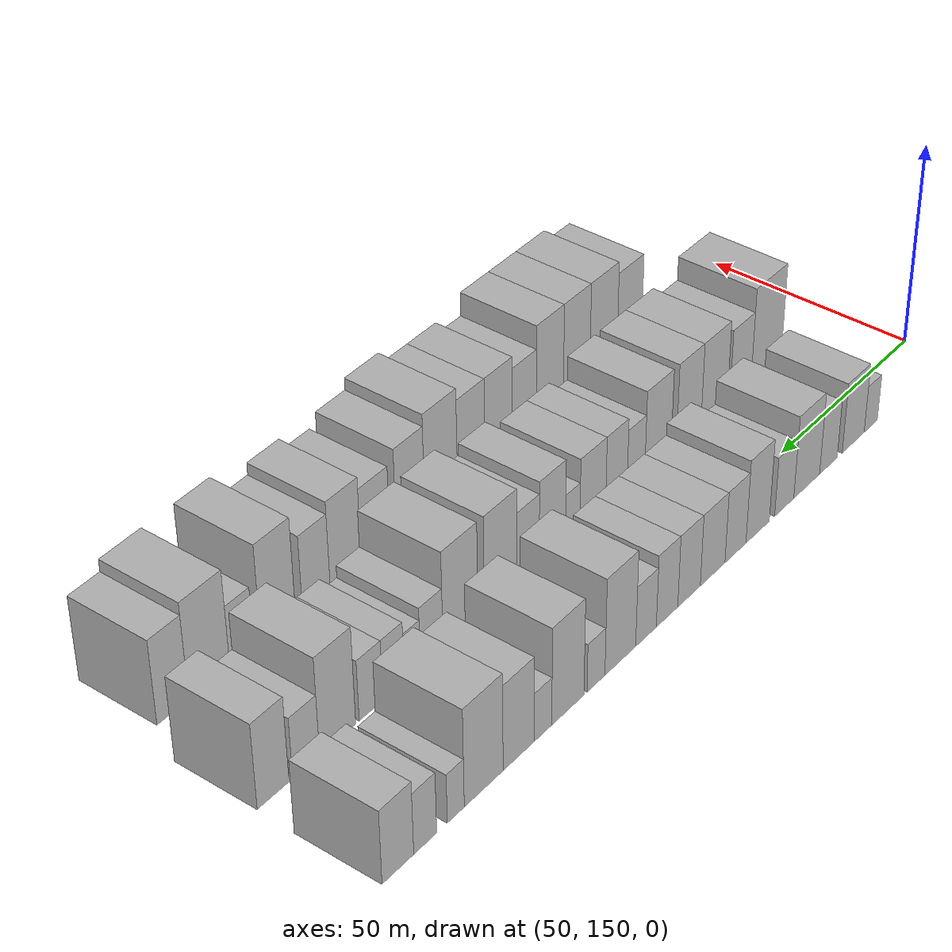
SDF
<sdf version="1.6">
 <world name="default">
  <model name="building_57">
   <static>1</static>
   <pose>50.0000 181.1910 0 0.000000 0.000000 0.000000</pose>
   <link name="link">
    <pose>0 0 6.00 0 0 0</pose>
    <collision name="collision"><geometry><box><size>20.0000 5.3339 12.0000</size></box></geometry></collision>
    <visual name="visual">
     <cast_shadows>0</cast_shadows>
     <geometry><box><size>20.0000 5.3339 12.0000</size></box></geometry>
     <material>
      <script>
       <uri>model://HANNAS_wall/materials/scripts</uri>
       <uri>model://HANNAS_wall/materials/textures</uri>
       <name>vrc/HANNAS_wall</name>
      </script>
     </material>
    </visual>
   </link>
  </model>
  <model name="building_58">
   <static>1</static>
   <pose>50.0000 188.2223 0 0.000000 0.000000 0.000000</pose>
   <link name="link">
    <pose>0 0 9.00 0 0 0</pose>
    <collision name="collision"><geometry><box><size>20.0000 8.7287 18.0000</size></box></geometry></collision>
    <visual name="visual">
     <cast_shadows>0</cast_shadows>
     <geometry><box><size>20.0000 8.7287 18.0000</size></box></geometry>
     <material>
      <script>
       <uri>model://HANNAS_wall/materials/scripts</uri>
       <uri>model://HANNAS_wall/materials/textures</uri>
       <name>vrc/HANNAS_wall</name>
      </script>
     </material>
    </visual>
   </link>
  </model>
  <model name="building_59">
   <static>1</static>
   <pose>50.0000 198.0226 0 0.000000 0.000000 0.000000</pose>
   <link name="link">
    <pose>0 0 7.50 0 0 0</pose>
    <collision name="collision"><geometry><box><size>20.0000 6.8718 15.0000</size></box></geometry></collision>
    <visual name="visual">
     <cast_shadows>0</cast_shadows>
     <geometry><box><size>20.0000 6.8718 15.0000</size></box></geometry>
     <material>
      <script>
       <uri>model://HANNAS_wall/materials/scripts</uri>
       <uri>model://HANNAS_wall/materials/textures</uri>
       <name>vrc/HANNAS_wall</name>
      </script>
     </material>
    </visual>
   </link>
  </model>
  <model name="building_60">
   <static>1</static>
   <pose>50.0000 206.3866 0 0.000000 0.000000 0.000000</pose>
   <link name="link">
    <pose>0 0 10.50 0 0 0</pose>
    <collision name="collision"><geometry><box><size>20.0000 9.8563 21.0000</size></box></geometry></collision>
    <visual name="visual">
     <cast_shadows>0</cast_shadows>
     <geometry><box><size>20.0000 9.8563 21.0000</size></box></geometry>
     <material>
      <script>
       <uri>model://HANNAS_wall/materials/scripts</uri>
       <uri>model://HANNAS_wall/materials/textures</uri>
       <name>vrc/HANNAS_wall</name>
      </script>
     </material>
    </visual>
   </link>
  </model>
  <model name="building_61">
   <static>1</static>
   <pose>50.0000 214.8966 0 0.000000 0.000000 0.000000</pose>
   <link name="link">
    <pose>0 0 7.50 0 0 0</pose>
    <collision name="collision"><geometry><box><size>20.0000 7.1636 15.0000</size></box></geometry></collision>
    <visual name="visual">
     <cast_shadows>0</cast_shadows>
     <geometry><box><size>20.0000 7.1636 15.0000</size></box></geometry>
     <material>
      <script>
       <uri>model://HANNAS_wall/materials/scripts</uri>
       <uri>model://HANNAS_wall/materials/textures</uri>
       <name>vrc/HANNAS_wall</name>
      </script>
     </material>
    </visual>
   </link>
  </model>
  <model name="building_62">
   <static>1</static>
   <pose>50.0000 224.7553 0 0.000000 0.000000 0.000000</pose>
   <link name="link">
    <pose>0 0 10.50 0 0 0</pose>
    <collision name="collision"><geometry><box><size>20.0000 8.5537 21.0000</size></box></geometry></collision>
    <visual name="visual">
     <cast_shadows>0</cast_shadows>
     <geometry><box><size>20.0000 8.5537 21.0000</size></box></geometry>
     <material>
      <script>
       <uri>model://HANNAS_wall/materials/scripts</uri>
       <uri>model://HANNAS_wall/materials/textures</uri>
       <name>vrc/HANNAS_wall</name>
      </script>
     </material>
    </visual>
   </link>
  </model>
  <model name="building_63">
   <static>1</static>
   <pose>50.0000 232.7942 0 0.000000 0.000000 0.000000</pose>
   <link name="link">
    <pose>0 0 9.00 0 0 0</pose>
    <collision name="collision"><geometry><box><size>20.0000 7.5243 18.0000</size></box></geometry></collision>
    <visual name="visual">
     <cast_shadows>0</cast_shadows>
     <geometry><box><size>20.0000 7.5243 18.0000</size></box></geometry>
     <material>
      <script>
       <uri>model://HANNAS_wall/materials/scripts</uri>
       <uri>model://HANNAS_wall/materials/textures</uri>
       <name>vrc/HANNAS_wall</name>
      </script>
     </material>
    </visual>
   </link>
  </model>
  <model name="building_64">
   <static>1</static>
   <pose>50.0000 240.9045 0 0.000000 0.000000 0.000000</pose>
   <link name="link">
    <pose>0 0 9.00 0 0 0</pose>
    <collision name="collision"><geometry><box><size>20.0000 8.6962 18.0000</size></box></geometry></collision>
    <visual name="visual">
     <cast_shadows>0</cast_shadows>
     <geometry><box><size>20.0000 8.6962 18.0000</size></box></geometry>
     <material>
      <script>
       <uri>model://HANNAS_wall/materials/scripts</uri>
       <uri>model://HANNAS_wall/materials/textures</uri>
       <name>vrc/HANNAS_wall</name>
      </script>
     </material>
    </visual>
   </link>
  </model>
  <model name="building_65">
   <static>1</static>
   <pose>50.0000 249.1445 0 0.000000 0.000000 0.000000</pose>
   <link name="link">
    <pose>0 0 9.00 0 0 0</pose>
    <collision name="collision"><geometry><box><size>20.0000 7.7839 18.0000</size></box></geometry></collision>
    <visual name="visual">
     <cast_shadows>0</cast_shadows>
     <geometry><box><size>20.0000 7.7839 18.0000</size></box></geometry>
     <material>
      <script>
       <uri>model://HANNAS_wall/materials/scripts</uri>
       <uri>model://HANNAS_wall/materials/textures</uri>
       <name>vrc/HANNAS_wall</name>
      </script>
     </material>
    </visual>
   </link>
  </model>
  <model name="building_66">
   <static>1</static>
   <pose>50.0000 256.6748 0 0.000000 0.000000 0.000000</pose>
   <link name="link">
    <pose>0 0 9.00 0 0 0</pose>
    <collision name="collision"><geometry><box><size>20.0000 7.2768 18.0000</size></box></geometry></collision>
    <visual name="visual">
     <cast_shadows>0</cast_shadows>
     <geometry><box><size>20.0000 7.2768 18.0000</size></box></geometry>
     <material>
      <script>
       <uri>model://HANNAS_wall/materials/scripts</uri>
       <uri>model://HANNAS_wall/materials/textures</uri>
       <name>vrc/HANNAS_wall</name>
      </script>
     </material>
    </visual>
   </link>
  </model>
  <model name="building_67">
   <static>1</static>
   <pose>50.0000 263.7551 0 0.000000 0.000000 0.000000</pose>
   <link name="link">
    <pose>0 0 7.50 0 0 0</pose>
    <collision name="collision"><geometry><box><size>20.0000 6.8838 15.0000</size></box></geometry></collision>
    <visual name="visual">
     <cast_shadows>0</cast_shadows>
     <geometry><box><size>20.0000 6.8838 15.0000</size></box></geometry>
     <material>
      <script>
       <uri>model://HANNAS_wall/materials/scripts</uri>
       <uri>model://HANNAS_wall/materials/textures</uri>
       <name>vrc/HANNAS_wall</name>
      </script>
     </material>
    </visual>
   </link>
  </model>
  <model name="building_68">
   <static>1</static>
   <pose>50.0000 272.2019 0 0.000000 0.000000 0.000000</pose>
   <link name="link">
    <pose>0 0 12.00 0 0 0</pose>
    <collision name="collision"><geometry><box><size>20.0000 10.0097 24.0000</size></box></geometry></collision>
    <visual name="visual">
     <cast_shadows>0</cast_shadows>
     <geometry><box><size>20.0000 10.0097 24.0000</size></box></geometry>
     <material>
      <script>
       <uri>model://HANNAS_wall/materials/scripts</uri>
       <uri>model://HANNAS_wall/materials/textures</uri>
       <name>vrc/HANNAS_wall</name>
      </script>
     </material>
    </visual>
   </link>
  </model>
  <model name="building_69">
   <static>1</static>
   <pose>50.0000 280.0561 0 0.000000 0.000000 0.000000</pose>
   <link name="link">
    <pose>0 0 6.00 0 0 0</pose>
    <collision name="collision"><geometry><box><size>20.0000 5.6988 12.0000</size></box></geometry></collision>
    <visual name="visual">
     <cast_shadows>0</cast_shadows>
     <geometry><box><size>20.0000 5.6988 12.0000</size></box></geometry>
     <material>
      <script>
       <uri>model://HANNAS_wall/materials/scripts</uri>
       <uri>model://HANNAS_wall/materials/textures</uri>
       <name>vrc/HANNAS_wall</name>
      </script>
     </material>
    </visual>
   </link>
  </model>
  <model name="building_70">
   <static>1</static>
   <pose>50.0000 288.9301 0 0.000000 0.000000 0.000000</pose>
   <link name="link">
    <pose>0 0 12.00 0 0 0</pose>
    <collision name="collision"><geometry><box><size>20.0000 10.0493 24.0000</size></box></geometry></collision>
    <visual name="visual">
     <cast_shadows>0</cast_shadows>
     <geometry><box><size>20.0000 10.0493 24.0000</size></box></geometry>
     <material>
      <script>
       <uri>model://HANNAS_wall/materials/scripts</uri>
       <uri>model://HANNAS_wall/materials/textures</uri>
       <name>vrc/HANNAS_wall</name>
      </script>
     </material>
    </visual>
   </link>
  </model>
  <model name="building_71">
   <static>1</static>
   <pose>50.0000 296.6088 0 0.000000 0.000000 0.000000</pose>
   <link name="link">
    <pose>0 0 6.00 0 0 0</pose>
    <collision name="collision"><geometry><box><size>20.0000 5.3081 12.0000</size></box></geometry></collision>
    <visual name="visual">
     <cast_shadows>0</cast_shadows>
     <geometry><box><size>20.0000 5.3081 12.0000</size></box></geometry>
     <material>
      <script>
       <uri>model://HANNAS_wall/materials/scripts</uri>
       <uri>model://HANNAS_wall/materials/textures</uri>
       <name>vrc/HANNAS_wall</name>
      </script>
     </material>
    </visual>
   </link>
  </model>
  <model name="building_72">
   <static>1</static>
   <pose>50.0000 303.9596 0 0.000000 0.000000 0.000000</pose>
   <link name="link">
    <pose>0 0 10.50 0 0 0</pose>
    <collision name="collision"><geometry><box><size>20.0000 9.3935 21.0000</size></box></geometry></collision>
    <visual name="visual">
     <cast_shadows>0</cast_shadows>
     <geometry><box><size>20.0000 9.3935 21.0000</size></box></geometry>
     <material>
      <script>
       <uri>model://HANNAS_wall/materials/scripts</uri>
       <uri>model://HANNAS_wall/materials/textures</uri>
       <name>vrc/HANNAS_wall</name>
      </script>
     </material>
    </visual>
   </link>
  </model>
  <model name="building_73">
   <static>1</static>
   <pose>50.0000 314.3340 0 0.000000 0.000000 0.000000</pose>
   <link name="link">
    <pose>0 0 12.00 0 0 0</pose>
    <collision name="collision"><geometry><box><size>20.0000 11.3553 24.0000</size></box></geometry></collision>
    <visual name="visual">
     <cast_shadows>0</cast_shadows>
     <geometry><box><size>20.0000 11.3553 24.0000</size></box></geometry>
     <material>
      <script>
       <uri>model://HANNAS_wall/materials/scripts</uri>
       <uri>model://HANNAS_wall/materials/textures</uri>
       <name>vrc/HANNAS_wall</name>
      </script>
     </material>
    </visual>
   </link>
  </model>
  <model name="building_74">
   <static>1</static>
   <pose>50.0000 322.4411 0 0.000000 0.000000 0.000000</pose>
   <link name="link">
    <pose>0 0 6.00 0 0 0</pose>
    <collision name="collision"><geometry><box><size>20.0000 4.8589 12.0000</size></box></geometry></collision>
    <visual name="visual">
     <cast_shadows>0</cast_shadows>
     <geometry><box><size>20.0000 4.8589 12.0000</size></box></geometry>
     <material>
      <script>
       <uri>model://HANNAS_wall/materials/scripts</uri>
       <uri>model://HANNAS_wall/materials/textures</uri>
       <name>vrc/HANNAS_wall</name>
      </script>
     </material>
    </visual>
   </link>
  </model>
  <model name="building_75">
   <static>1</static>
   <pose>50.0000 331.0796 0 0.000000 0.000000 0.000000</pose>
   <link name="link">
    <pose>0 0 7.50 0 0 0</pose>
    <collision name="collision"><geometry><box><size>20.0000 6.4180 15.0000</size></box></geometry></collision>
    <visual name="visual">
     <cast_shadows>0</cast_shadows>
     <geometry><box><size>20.0000 6.4180 15.0000</size></box></geometry>
     <material>
      <script>
       <uri>model://HANNAS_wall/materials/scripts</uri>
       <uri>model://HANNAS_wall/materials/textures</uri>
       <name>vrc/HANNAS_wall</name>
      </script>
     </material>
    </visual>
   </link>
  </model>
  <model name="building_76">
   <static>1</static>
   <pose>50.0000 338.6330 0 0.000000 0.000000 0.000000</pose>
   <link name="link">
    <pose>0 0 9.00 0 0 0</pose>
    <collision name="collision"><geometry><box><size>20.0000 8.6889 18.0000</size></box></geometry></collision>
    <visual name="visual">
     <cast_shadows>0</cast_shadows>
     <geometry><box><size>20.0000 8.6889 18.0000</size></box></geometry>
     <material>
      <script>
       <uri>model://HANNAS_wall/materials/scripts</uri>
       <uri>model://HANNAS_wall/materials/textures</uri>
       <name>vrc/HANNAS_wall</name>
      </script>
     </material>
    </visual>
   </link>
  </model>
  <model name="building_134">
   <static>1</static>
   <pose>79.0000 176.8236 0 0.000000 0.000000 0.000000</pose>
   <link name="link">
    <pose>0 0 12.00 0 0 0</pose>
    <collision name="collision"><geometry><box><size>20.0000 11.9897 24.0000</size></box></geometry></collision>
    <visual name="visual">
     <cast_shadows>0</cast_shadows>
     <geometry><box><size>20.0000 11.9897 24.0000</size></box></geometry>
     <material>
      <script>
       <uri>model://HANNAS_wall/materials/scripts</uri>
       <uri>model://HANNAS_wall/materials/textures</uri>
       <name>vrc/HANNAS_wall</name>
      </script>
     </material>
    </visual>
   </link>
  </model>
  <model name="building_135">
   <static>1</static>
   <pose>79.0000 186.9787 0 0.000000 0.000000 0.000000</pose>
   <link name="link">
    <pose>0 0 9.00 0 0 0</pose>
    <collision name="collision"><geometry><box><size>20.0000 8.3206 18.0000</size></box></geometry></collision>
    <visual name="visual">
     <cast_shadows>0</cast_shadows>
     <geometry><box><size>20.0000 8.3206 18.0000</size></box></geometry>
     <material>
      <script>
       <uri>model://HANNAS_wall/materials/scripts</uri>
       <uri>model://HANNAS_wall/materials/textures</uri>
       <name>vrc/HANNAS_wall</name>
      </script>
     </material>
    </visual>
   </link>
  </model>
  <model name="building_136">
   <static>1</static>
   <pose>79.0000 197.1295 0 0.000000 0.000000 0.000000</pose>
   <link name="link">
    <pose>0 0 10.50 0 0 0</pose>
    <collision name="collision"><geometry><box><size>20.0000 9.9810 21.0000</size></box></geometry></collision>
    <visual name="visual">
     <cast_shadows>0</cast_shadows>
     <geometry><box><size>20.0000 9.9810 21.0000</size></box></geometry>
     <material>
      <script>
       <uri>model://HANNAS_wall/materials/scripts</uri>
       <uri>model://HANNAS_wall/materials/textures</uri>
       <name>vrc/HANNAS_wall</name>
      </script>
     </material>
    </visual>
   </link>
  </model>
  <model name="building_137">
   <static>1</static>
   <pose>79.0000 206.6999 0 0.000000 0.000000 0.000000</pose>
   <link name="link">
    <pose>0 0 10.50 0 0 0</pose>
    <collision name="collision"><geometry><box><size>20.0000 9.1597 21.0000</size></box></geometry></collision>
    <visual name="visual">
     <cast_shadows>0</cast_shadows>
     <geometry><box><size>20.0000 9.1597 21.0000</size></box></geometry>
     <material>
      <script>
       <uri>model://HANNAS_wall/materials/scripts</uri>
       <uri>model://HANNAS_wall/materials/textures</uri>
       <name>vrc/HANNAS_wall</name>
      </script>
     </material>
    </visual>
   </link>
  </model>
  <model name="building_138">
   <static>1</static>
   <pose>79.0000 218.0399 0 0.000000 0.000000 0.000000</pose>
   <link name="link">
    <pose>0 0 10.50 0 0 0</pose>
    <collision name="collision"><geometry><box><size>20.0000 9.5202 21.0000</size></box></geometry></collision>
    <visual name="visual">
     <cast_shadows>0</cast_shadows>
     <geometry><box><size>20.0000 9.5202 21.0000</size></box></geometry>
     <material>
      <script>
       <uri>model://HANNAS_wall/materials/scripts</uri>
       <uri>model://HANNAS_wall/materials/textures</uri>
       <name>vrc/HANNAS_wall</name>
      </script>
     </material>
    </visual>
   </link>
  </model>
  <model name="building_139">
   <static>1</static>
   <pose>79.0000 225.9549 0 0.000000 0.000000 0.000000</pose>
   <link name="link">
    <pose>0 0 7.50 0 0 0</pose>
    <collision name="collision"><geometry><box><size>20.0000 6.3098 15.0000</size></box></geometry></collision>
    <visual name="visual">
     <cast_shadows>0</cast_shadows>
     <geometry><box><size>20.0000 6.3098 15.0000</size></box></geometry>
     <material>
      <script>
       <uri>model://HANNAS_wall/materials/scripts</uri>
       <uri>model://HANNAS_wall/materials/textures</uri>
       <name>vrc/HANNAS_wall</name>
      </script>
     </material>
    </visual>
   </link>
  </model>
  <model name="building_140">
   <static>1</static>
   <pose>79.0000 232.8676 0 0.000000 0.000000 0.000000</pose>
   <link name="link">
    <pose>0 0 9.00 0 0 0</pose>
    <collision name="collision"><geometry><box><size>20.0000 7.5157 18.0000</size></box></geometry></collision>
    <visual name="visual">
     <cast_shadows>0</cast_shadows>
     <geometry><box><size>20.0000 7.5157 18.0000</size></box></geometry>
     <material>
      <script>
       <uri>model://HANNAS_wall/materials/scripts</uri>
       <uri>model://HANNAS_wall/materials/textures</uri>
       <name>vrc/HANNAS_wall</name>
      </script>
     </material>
    </visual>
   </link>
  </model>
  <model name="building_141">
   <static>1</static>
   <pose>79.0000 241.0618 0 0.000000 0.000000 0.000000</pose>
   <link name="link">
    <pose>0 0 9.00 0 0 0</pose>
    <collision name="collision"><geometry><box><size>20.0000 8.8726 18.0000</size></box></geometry></collision>
    <visual name="visual">
     <cast_shadows>0</cast_shadows>
     <geometry><box><size>20.0000 8.8726 18.0000</size></box></geometry>
     <material>
      <script>
       <uri>model://HANNAS_wall/materials/scripts</uri>
       <uri>model://HANNAS_wall/materials/textures</uri>
       <name>vrc/HANNAS_wall</name>
      </script>
     </material>
    </visual>
   </link>
  </model>
  <model name="building_142">
   <static>1</static>
   <pose>79.0000 247.9325 0 0.000000 0.000000 0.000000</pose>
   <link name="link">
    <pose>0 0 6.00 0 0 0</pose>
    <collision name="collision"><geometry><box><size>20.0000 4.8688 12.0000</size></box></geometry></collision>
    <visual name="visual">
     <cast_shadows>0</cast_shadows>
     <geometry><box><size>20.0000 4.8688 12.0000</size></box></geometry>
     <material>
      <script>
       <uri>model://HANNAS_wall/materials/scripts</uri>
       <uri>model://HANNAS_wall/materials/textures</uri>
       <name>vrc/HANNAS_wall</name>
      </script>
     </material>
    </visual>
   </link>
  </model>
  <model name="building_143">
   <static>1</static>
   <pose>79.0000 254.7275 0 0.000000 0.000000 0.000000</pose>
   <link name="link">
    <pose>0 0 10.50 0 0 0</pose>
    <collision name="collision"><geometry><box><size>20.0000 8.7212 21.0000</size></box></geometry></collision>
    <visual name="visual">
     <cast_shadows>0</cast_shadows>
     <geometry><box><size>20.0000 8.7212 21.0000</size></box></geometry>
     <material>
      <script>
       <uri>model://HANNAS_wall/materials/scripts</uri>
       <uri>model://HANNAS_wall/materials/textures</uri>
       <name>vrc/HANNAS_wall</name>
      </script>
     </material>
    </visual>
   </link>
  </model>
  <model name="building_144">
   <static>1</static>
   <pose>79.0000 262.7322 0 0.000000 0.000000 0.000000</pose>
   <link name="link">
    <pose>0 0 9.00 0 0 0</pose>
    <collision name="collision"><geometry><box><size>20.0000 7.2882 18.0000</size></box></geometry></collision>
    <visual name="visual">
     <cast_shadows>0</cast_shadows>
     <geometry><box><size>20.0000 7.2882 18.0000</size></box></geometry>
     <material>
      <script>
       <uri>model://HANNAS_wall/materials/scripts</uri>
       <uri>model://HANNAS_wall/materials/textures</uri>
       <name>vrc/HANNAS_wall</name>
      </script>
     </material>
    </visual>
   </link>
  </model>
  <model name="building_145">
   <static>1</static>
   <pose>79.0000 271.5715 0 0.000000 0.000000 0.000000</pose>
   <link name="link">
    <pose>0 0 12.00 0 0 0</pose>
    <collision name="collision"><geometry><box><size>20.0000 10.3905 24.0000</size></box></geometry></collision>
    <visual name="visual">
     <cast_shadows>0</cast_shadows>
     <geometry><box><size>20.0000 10.3905 24.0000</size></box></geometry>
     <material>
      <script>
       <uri>model://HANNAS_wall/materials/scripts</uri>
       <uri>model://HANNAS_wall/materials/textures</uri>
       <name>vrc/HANNAS_wall</name>
      </script>
     </material>
    </visual>
   </link>
  </model>
  <model name="building_146">
   <static>1</static>
   <pose>79.0000 284.1785 0 0.000000 0.000000 0.000000</pose>
   <link name="link">
    <pose>0 0 12.00 0 0 0</pose>
    <collision name="collision"><geometry><box><size>20.0000 10.8234 24.0000</size></box></geometry></collision>
    <visual name="visual">
     <cast_shadows>0</cast_shadows>
     <geometry><box><size>20.0000 10.8234 24.0000</size></box></geometry>
     <material>
      <script>
       <uri>model://HANNAS_wall/materials/scripts</uri>
       <uri>model://HANNAS_wall/materials/textures</uri>
       <name>vrc/HANNAS_wall</name>
      </script>
     </material>
    </visual>
   </link>
  </model>
  <model name="building_147">
   <static>1</static>
   <pose>79.0000 293.0141 0 0.000000 0.000000 0.000000</pose>
   <link name="link">
    <pose>0 0 7.50 0 0 0</pose>
    <collision name="collision"><geometry><box><size>20.0000 6.8479 15.0000</size></box></geometry></collision>
    <visual name="visual">
     <cast_shadows>0</cast_shadows>
     <geometry><box><size>20.0000 6.8479 15.0000</size></box></geometry>
     <material>
      <script>
       <uri>model://HANNAS_wall/materials/scripts</uri>
       <uri>model://HANNAS_wall/materials/textures</uri>
       <name>vrc/HANNAS_wall</name>
      </script>
     </material>
    </visual>
   </link>
  </model>
  <model name="building_148">
   <static>1</static>
   <pose>79.0000 298.8559 0 0.000000 0.000000 0.000000</pose>
   <link name="link">
    <pose>0 0 6.00 0 0 0</pose>
    <collision name="collision"><geometry><box><size>20.0000 4.8356 12.0000</size></box></geometry></collision>
    <visual name="visual">
     <cast_shadows>0</cast_shadows>
     <geometry><box><size>20.0000 4.8356 12.0000</size></box></geometry>
     <material>
      <script>
       <uri>model://HANNAS_wall/materials/scripts</uri>
       <uri>model://HANNAS_wall/materials/textures</uri>
       <name>vrc/HANNAS_wall</name>
      </script>
     </material>
    </visual>
   </link>
  </model>
  <model name="building_149">
   <static>1</static>
   <pose>79.0000 304.4409 0 0.000000 0.000000 0.000000</pose>
   <link name="link">
    <pose>0 0 7.50 0 0 0</pose>
    <collision name="collision"><geometry><box><size>20.0000 6.3345 15.0000</size></box></geometry></collision>
    <visual name="visual">
     <cast_shadows>0</cast_shadows>
     <geometry><box><size>20.0000 6.3345 15.0000</size></box></geometry>
     <material>
      <script>
       <uri>model://HANNAS_wall/materials/scripts</uri>
       <uri>model://HANNAS_wall/materials/textures</uri>
       <name>vrc/HANNAS_wall</name>
      </script>
     </material>
    </visual>
   </link>
  </model>
  <model name="building_150">
   <static>1</static>
   <pose>79.0000 311.0203 0 0.000000 0.000000 0.000000</pose>
   <link name="link">
    <pose>0 0 7.50 0 0 0</pose>
    <collision name="collision"><geometry><box><size>20.0000 6.8242 15.0000</size></box></geometry></collision>
    <visual name="visual">
     <cast_shadows>0</cast_shadows>
     <geometry><box><size>20.0000 6.8242 15.0000</size></box></geometry>
     <material>
      <script>
       <uri>model://HANNAS_wall/materials/scripts</uri>
       <uri>model://HANNAS_wall/materials/textures</uri>
       <name>vrc/HANNAS_wall</name>
      </script>
     </material>
    </visual>
   </link>
  </model>
  <model name="building_151">
   <static>1</static>
   <pose>79.0000 320.5242 0 0.000000 0.000000 0.000000</pose>
   <link name="link">
    <pose>0 0 12.00 0 0 0</pose>
    <collision name="collision"><geometry><box><size>20.0000 10.1835 24.0000</size></box></geometry></collision>
    <visual name="visual">
     <cast_shadows>0</cast_shadows>
     <geometry><box><size>20.0000 10.1835 24.0000</size></box></geometry>
     <material>
      <script>
       <uri>model://HANNAS_wall/materials/scripts</uri>
       <uri>model://HANNAS_wall/materials/textures</uri>
       <name>vrc/HANNAS_wall</name>
      </script>
     </material>
    </visual>
   </link>
  </model>
  <model name="building_152">
   <static>1</static>
   <pose>79.0000 329.3324 0 0.000000 0.000000 0.000000</pose>
   <link name="link">
    <pose>0 0 7.50 0 0 0</pose>
    <collision name="collision"><geometry><box><size>20.0000 7.4331 15.0000</size></box></geometry></collision>
    <visual name="visual">
     <cast_shadows>0</cast_shadows>
     <geometry><box><size>20.0000 7.4331 15.0000</size></box></geometry>
     <material>
      <script>
       <uri>model://HANNAS_wall/materials/scripts</uri>
       <uri>model://HANNAS_wall/materials/textures</uri>
       <name>vrc/HANNAS_wall</name>
      </script>
     </material>
    </visual>
   </link>
  </model>
  <model name="building_153">
   <static>1</static>
   <pose>79.0000 338.3413 0 0.000000 0.000000 0.000000</pose>
   <link name="link">
    <pose>0 0 10.50 0 0 0</pose>
    <collision name="collision"><geometry><box><size>20.0000 8.5847 21.0000</size></box></geometry></collision>
    <visual name="visual">
     <cast_shadows>0</cast_shadows>
     <geometry><box><size>20.0000 8.5847 21.0000</size></box></geometry>
     <material>
      <script>
       <uri>model://HANNAS_wall/materials/scripts</uri>
       <uri>model://HANNAS_wall/materials/textures</uri>
       <name>vrc/HANNAS_wall</name>
      </script>
     </material>
    </visual>
   </link>
  </model>
  <model name="building_208">
   <static>1</static>
   <pose>108.0000 187.3224 0 0.000000 0.000000 0.000000</pose>
   <link name="link">
    <pose>0 0 10.50 0 0 0</pose>
    <collision name="collision"><geometry><box><size>20.0000 9.3240 21.0000</size></box></geometry></collision>
    <visual name="visual">
     <cast_shadows>0</cast_shadows>
     <geometry><box><size>20.0000 9.3240 21.0000</size></box></geometry>
     <material>
      <script>
       <uri>model://HANNAS_wall/materials/scripts</uri>
       <uri>model://HANNAS_wall/materials/textures</uri>
       <name>vrc/HANNAS_wall</name>
      </script>
     </material>
    </visual>
   </link>
  </model>
  <model name="building_209">
   <static>1</static>
   <pose>108.0000 197.0554 0 0.000000 0.000000 0.000000</pose>
   <link name="link">
    <pose>0 0 12.00 0 0 0</pose>
    <collision name="collision"><geometry><box><size>20.0000 10.1421 24.0000</size></box></geometry></collision>
    <visual name="visual">
     <cast_shadows>0</cast_shadows>
     <geometry><box><size>20.0000 10.1421 24.0000</size></box></geometry>
     <material>
      <script>
       <uri>model://HANNAS_wall/materials/scripts</uri>
       <uri>model://HANNAS_wall/materials/textures</uri>
       <name>vrc/HANNAS_wall</name>
      </script>
     </material>
    </visual>
   </link>
  </model>
  <model name="building_210">
   <static>1</static>
   <pose>108.0000 206.9317 0 0.000000 0.000000 0.000000</pose>
   <link name="link">
    <pose>0 0 12.00 0 0 0</pose>
    <collision name="collision"><geometry><box><size>20.0000 9.6106 24.0000</size></box></geometry></collision>
    <visual name="visual">
     <cast_shadows>0</cast_shadows>
     <geometry><box><size>20.0000 9.6106 24.0000</size></box></geometry>
     <material>
      <script>
       <uri>model://HANNAS_wall/materials/scripts</uri>
       <uri>model://HANNAS_wall/materials/textures</uri>
       <name>vrc/HANNAS_wall</name>
      </script>
     </material>
    </visual>
   </link>
  </model>
  <model name="building_211">
   <static>1</static>
   <pose>108.0000 216.5657 0 0.000000 0.000000 0.000000</pose>
   <link name="link">
    <pose>0 0 12.00 0 0 0</pose>
    <collision name="collision"><geometry><box><size>20.0000 9.6573 24.0000</size></box></geometry></collision>
    <visual name="visual">
     <cast_shadows>0</cast_shadows>
     <geometry><box><size>20.0000 9.6573 24.0000</size></box></geometry>
     <material>
      <script>
       <uri>model://HANNAS_wall/materials/scripts</uri>
       <uri>model://HANNAS_wall/materials/textures</uri>
       <name>vrc/HANNAS_wall</name>
      </script>
     </material>
    </visual>
   </link>
  </model>
  <model name="building_212">
   <static>1</static>
   <pose>108.0000 225.5814 0 0.000000 0.000000 0.000000</pose>
   <link name="link">
    <pose>0 0 9.00 0 0 0</pose>
    <collision name="collision"><geometry><box><size>20.0000 8.3741 18.0000</size></box></geometry></collision>
    <visual name="visual">
     <cast_shadows>0</cast_shadows>
     <geometry><box><size>20.0000 8.3741 18.0000</size></box></geometry>
     <material>
      <script>
       <uri>model://HANNAS_wall/materials/scripts</uri>
       <uri>model://HANNAS_wall/materials/textures</uri>
       <name>vrc/HANNAS_wall</name>
      </script>
     </material>
    </visual>
   </link>
  </model>
  <model name="building_213">
   <static>1</static>
   <pose>108.0000 234.4726 0 0.000000 0.000000 0.000000</pose>
   <link name="link">
    <pose>0 0 10.50 0 0 0</pose>
    <collision name="collision"><geometry><box><size>20.0000 9.4083 21.0000</size></box></geometry></collision>
    <visual name="visual">
     <cast_shadows>0</cast_shadows>
     <geometry><box><size>20.0000 9.4083 21.0000</size></box></geometry>
     <material>
      <script>
       <uri>model://HANNAS_wall/materials/scripts</uri>
       <uri>model://HANNAS_wall/materials/textures</uri>
       <name>vrc/HANNAS_wall</name>
      </script>
     </material>
    </visual>
   </link>
  </model>
  <model name="building_214">
   <static>1</static>
   <pose>108.0000 243.7684 0 0.000000 0.000000 0.000000</pose>
   <link name="link">
    <pose>0 0 10.50 0 0 0</pose>
    <collision name="collision"><geometry><box><size>20.0000 9.1834 21.0000</size></box></geometry></collision>
    <visual name="visual">
     <cast_shadows>0</cast_shadows>
     <geometry><box><size>20.0000 9.1834 21.0000</size></box></geometry>
     <material>
      <script>
       <uri>model://HANNAS_wall/materials/scripts</uri>
       <uri>model://HANNAS_wall/materials/textures</uri>
       <name>vrc/HANNAS_wall</name>
      </script>
     </material>
    </visual>
   </link>
  </model>
  <model name="building_215">
   <static>1</static>
   <pose>108.0000 253.7222 0 0.000000 0.000000 0.000000</pose>
   <link name="link">
    <pose>0 0 12.00 0 0 0</pose>
    <collision name="collision"><geometry><box><size>20.0000 10.7242 24.0000</size></box></geometry></collision>
    <visual name="visual">
     <cast_shadows>0</cast_shadows>
     <geometry><box><size>20.0000 10.7242 24.0000</size></box></geometry>
     <material>
      <script>
       <uri>model://HANNAS_wall/materials/scripts</uri>
       <uri>model://HANNAS_wall/materials/textures</uri>
       <name>vrc/HANNAS_wall</name>
      </script>
     </material>
    </visual>
   </link>
  </model>
  <model name="building_216">
   <static>1</static>
   <pose>108.0000 263.6586 0 0.000000 0.000000 0.000000</pose>
   <link name="link">
    <pose>0 0 10.50 0 0 0</pose>
    <collision name="collision"><geometry><box><size>20.0000 9.1487 21.0000</size></box></geometry></collision>
    <visual name="visual">
     <cast_shadows>0</cast_shadows>
     <geometry><box><size>20.0000 9.1487 21.0000</size></box></geometry>
     <material>
      <script>
       <uri>model://HANNAS_wall/materials/scripts</uri>
       <uri>model://HANNAS_wall/materials/textures</uri>
       <name>vrc/HANNAS_wall</name>
      </script>
     </material>
    </visual>
   </link>
  </model>
  <model name="building_217">
   <static>1</static>
   <pose>108.0000 274.7088 0 0.000000 0.000000 0.000000</pose>
   <link name="link">
    <pose>0 0 9.00 0 0 0</pose>
    <collision name="collision"><geometry><box><size>20.0000 8.9516 18.0000</size></box></geometry></collision>
    <visual name="visual">
     <cast_shadows>0</cast_shadows>
     <geometry><box><size>20.0000 8.9516 18.0000</size></box></geometry>
     <material>
      <script>
       <uri>model://HANNAS_wall/materials/scripts</uri>
       <uri>model://HANNAS_wall/materials/textures</uri>
       <name>vrc/HANNAS_wall</name>
      </script>
     </material>
    </visual>
   </link>
  </model>
  <model name="building_218">
   <static>1</static>
   <pose>108.0000 283.9133 0 0.000000 0.000000 0.000000</pose>
   <link name="link">
    <pose>0 0 10.50 0 0 0</pose>
    <collision name="collision"><geometry><box><size>20.0000 9.4573 21.0000</size></box></geometry></collision>
    <visual name="visual">
     <cast_shadows>0</cast_shadows>
     <geometry><box><size>20.0000 9.4573 21.0000</size></box></geometry>
     <material>
      <script>
       <uri>model://HANNAS_wall/materials/scripts</uri>
       <uri>model://HANNAS_wall/materials/textures</uri>
       <name>vrc/HANNAS_wall</name>
      </script>
     </material>
    </visual>
   </link>
  </model>
  <model name="building_219">
   <static>1</static>
   <pose>108.0000 292.7874 0 0.000000 0.000000 0.000000</pose>
   <link name="link">
    <pose>0 0 9.00 0 0 0</pose>
    <collision name="collision"><geometry><box><size>20.0000 8.2910 18.0000</size></box></geometry></collision>
    <visual name="visual">
     <cast_shadows>0</cast_shadows>
     <geometry><box><size>20.0000 8.2910 18.0000</size></box></geometry>
     <material>
      <script>
       <uri>model://HANNAS_wall/materials/scripts</uri>
       <uri>model://HANNAS_wall/materials/textures</uri>
       <name>vrc/HANNAS_wall</name>
      </script>
     </material>
    </visual>
   </link>
  </model>
  <model name="building_220">
   <static>1</static>
   <pose>108.0000 303.9524 0 0.000000 0.000000 0.000000</pose>
   <link name="link">
    <pose>0 0 12.00 0 0 0</pose>
    <collision name="collision"><geometry><box><size>20.0000 10.0391 24.0000</size></box></geometry></collision>
    <visual name="visual">
     <cast_shadows>0</cast_shadows>
     <geometry><box><size>20.0000 10.0391 24.0000</size></box></geometry>
     <material>
      <script>
       <uri>model://HANNAS_wall/materials/scripts</uri>
       <uri>model://HANNAS_wall/materials/textures</uri>
       <name>vrc/HANNAS_wall</name>
      </script>
     </material>
    </visual>
   </link>
  </model>
  <model name="building_221">
   <static>1</static>
   <pose>108.0000 314.3818 0 0.000000 0.000000 0.000000</pose>
   <link name="link">
    <pose>0 0 7.50 0 0 0</pose>
    <collision name="collision"><geometry><box><size>20.0000 6.8196 15.0000</size></box></geometry></collision>
    <visual name="visual">
     <cast_shadows>0</cast_shadows>
     <geometry><box><size>20.0000 6.8196 15.0000</size></box></geometry>
     <material>
      <script>
       <uri>model://HANNAS_wall/materials/scripts</uri>
       <uri>model://HANNAS_wall/materials/textures</uri>
       <name>vrc/HANNAS_wall</name>
      </script>
     </material>
    </visual>
   </link>
  </model>
  <model name="building_222">
   <static>1</static>
   <pose>108.0000 323.4664 0 0.000000 0.000000 0.000000</pose>
   <link name="link">
    <pose>0 0 12.00 0 0 0</pose>
    <collision name="collision"><geometry><box><size>20.0000 11.3495 24.0000</size></box></geometry></collision>
    <visual name="visual">
     <cast_shadows>0</cast_shadows>
     <geometry><box><size>20.0000 11.3495 24.0000</size></box></geometry>
     <material>
      <script>
       <uri>model://HANNAS_wall/materials/scripts</uri>
       <uri>model://HANNAS_wall/materials/textures</uri>
       <name>vrc/HANNAS_wall</name>
      </script>
     </material>
    </visual>
   </link>
  </model>
  <model name="building_223">
   <static>1</static>
   <pose>108.0000 333.4240 0 0.000000 0.000000 0.000000</pose>
   <link name="link">
    <pose>0 0 10.50 0 0 0</pose>
    <collision name="collision"><geometry><box><size>20.0000 8.5658 21.0000</size></box></geometry></collision>
    <visual name="visual">
     <cast_shadows>0</cast_shadows>
     <geometry><box><size>20.0000 8.5658 21.0000</size></box></geometry>
     <material>
      <script>
       <uri>model://HANNAS_wall/materials/scripts</uri>
       <uri>model://HANNAS_wall/materials/textures</uri>
       <name>vrc/HANNAS_wall</name>
      </script>
     </material>
    </visual>
   </link>
  </model>
 </world>
</sdf>
